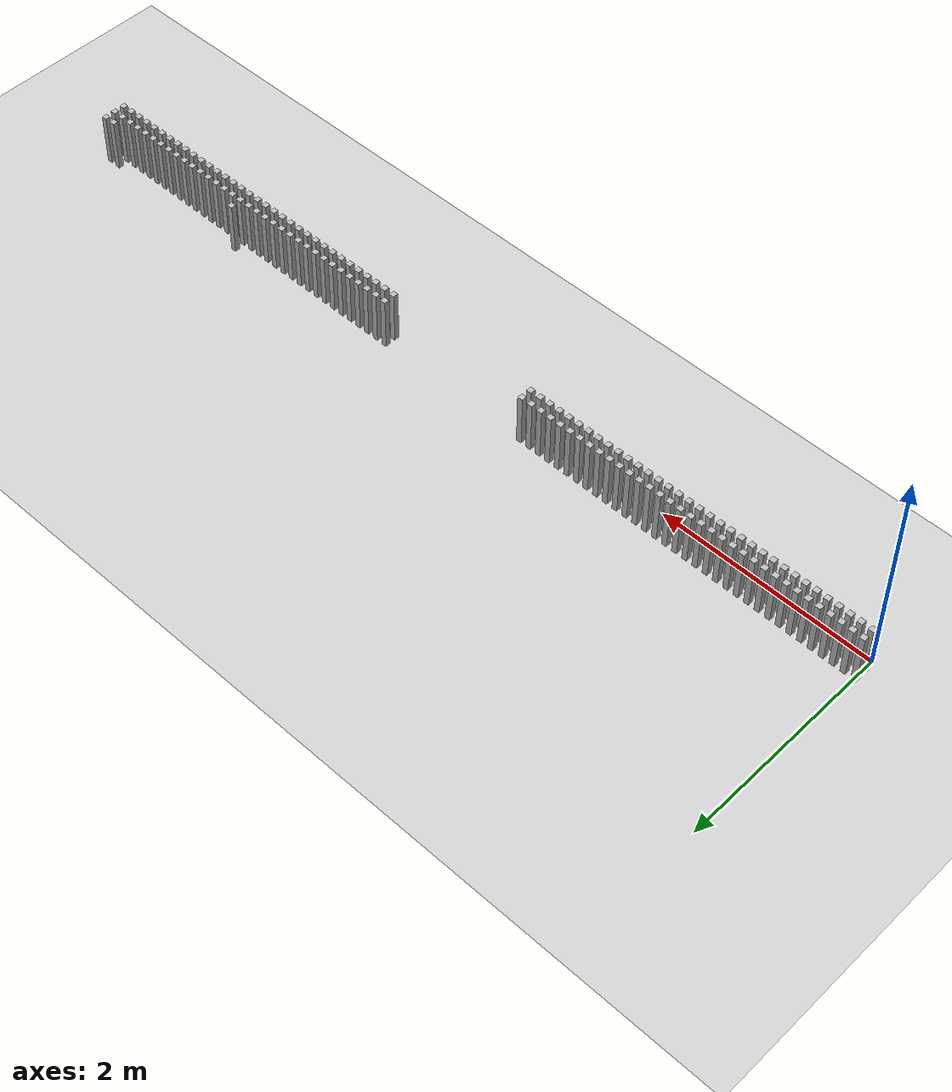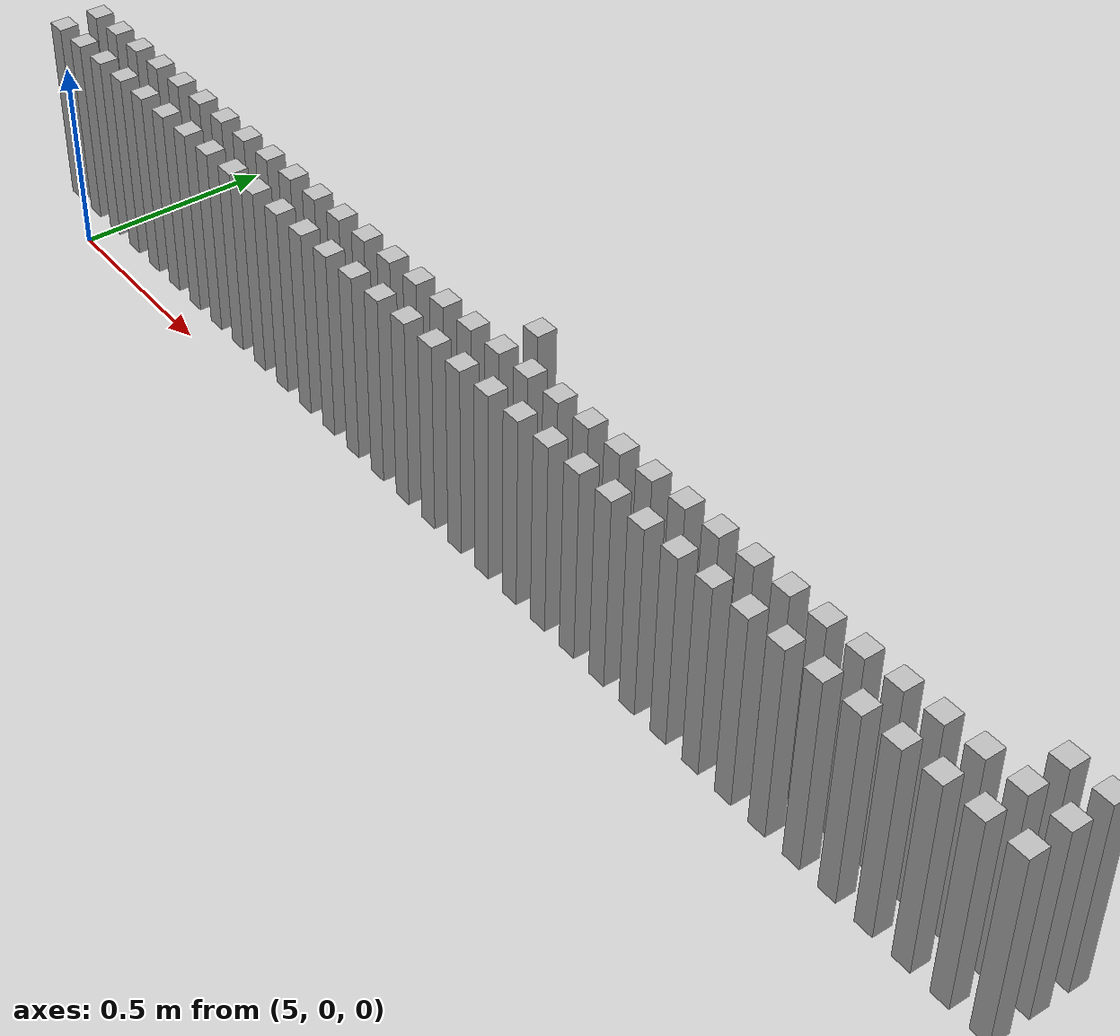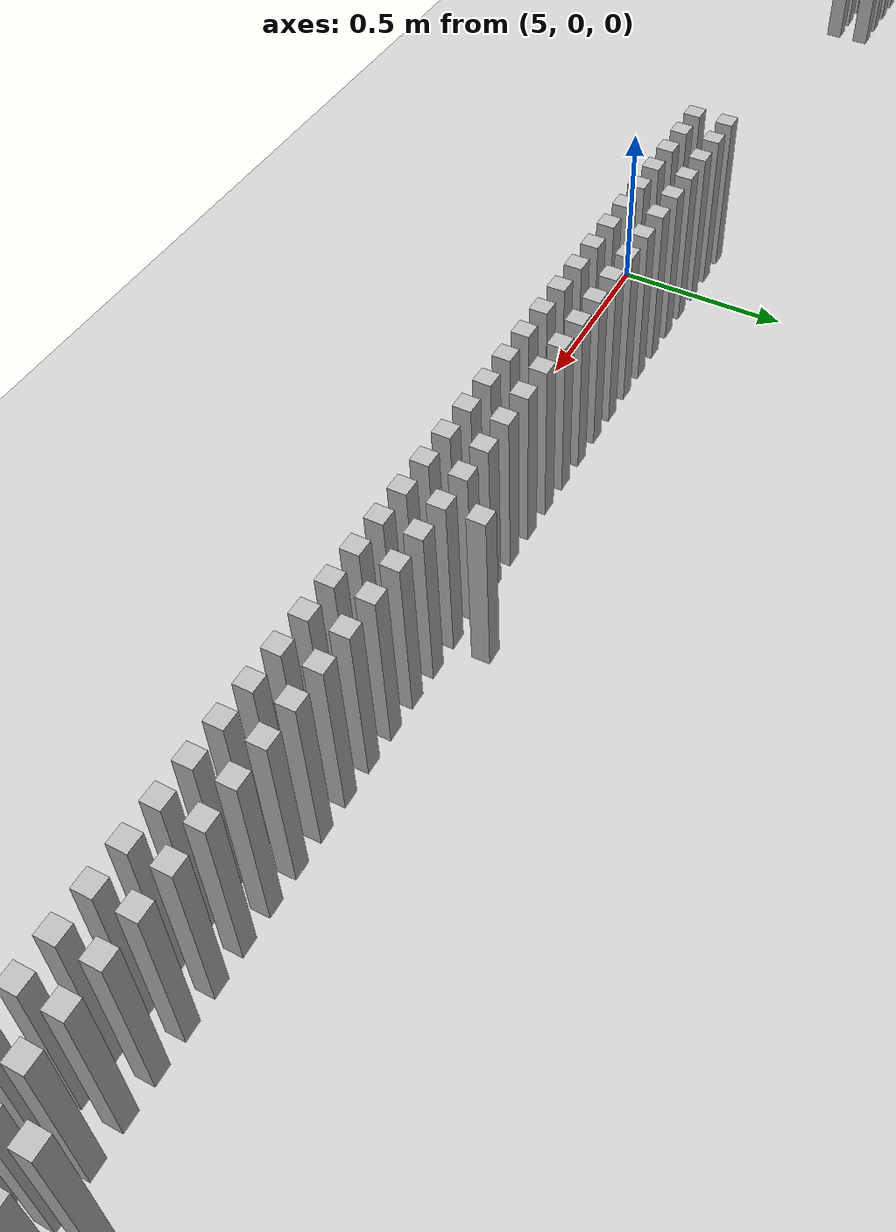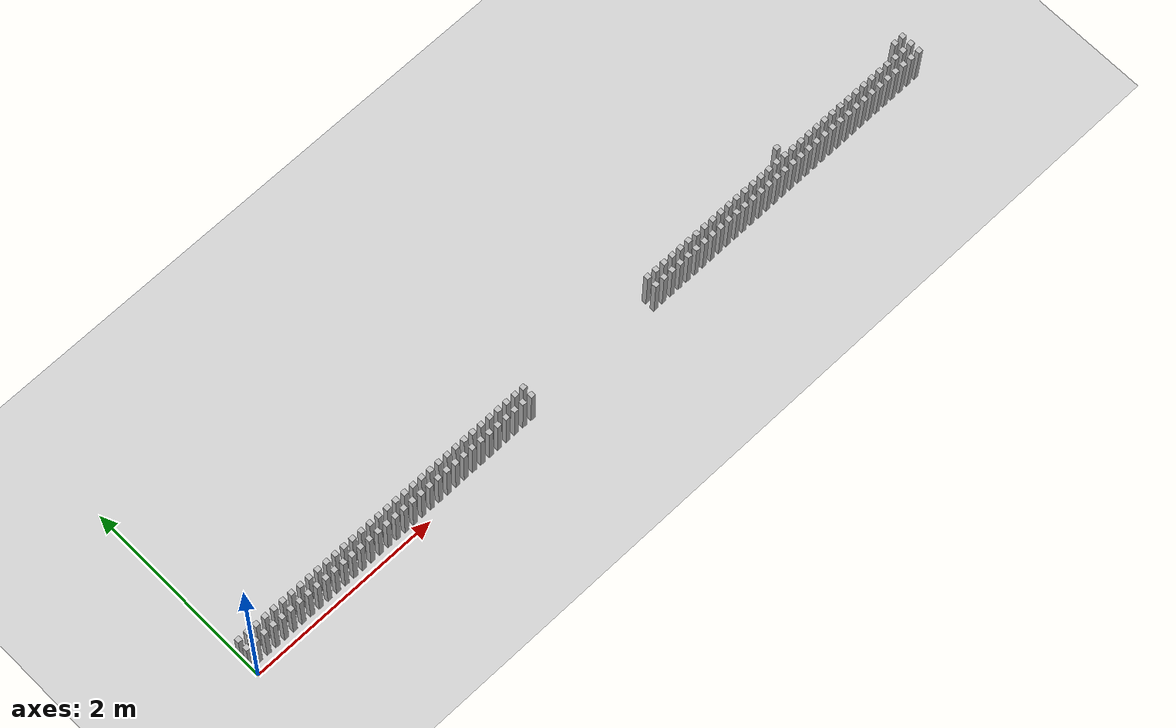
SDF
<sdf version="1.6">
 <world name="default_world">
  <include><uri>model://sun</uri></include>
  <include><uri>model://ground_plane</uri></include>
  <model name="wall_957">
   <static>true</static>
   <link name="link">
    <collision name="collision"><geometry><box><size>0.05 0.05 0.5</size></box></geometry></collision>
    <visual name="visual"><geometry><box><size>0.05 0.05 0.5</size></box></geometry></visual>
    <pose>6.5 0.30000000000000004 0.25 0 0 0</pose>
   </link>
  </model>
  <model name="wall_958">
   <static>true</static>
   <link name="link">
    <collision name="collision"><geometry><box><size>0.05 0.05 0.5</size></box></geometry></collision>
    <visual name="visual"><geometry><box><size>0.05 0.05 0.5</size></box></geometry></visual>
    <pose>8.0 0.30000000000000004 0.25 0 0 0</pose>
   </link>
  </model>
  <model name="wall_959">
   <static>true</static>
   <link name="link">
    <collision name="collision"><geometry><box><size>0.05 0.05 0.5</size></box></geometry></collision>
    <visual name="visual"><geometry><box><size>0.05 0.05 0.5</size></box></geometry></visual>
    <pose>8.1 0.30000000000000004 0.25 0 0 0</pose>
   </link>
  </model>
  <model name="wall_960">
   <static>true</static>
   <link name="link">
    <collision name="collision"><geometry><box><size>0.05 0.05 0.5</size></box></geometry></collision>
    <visual name="visual"><geometry><box><size>0.05 0.05 0.5</size></box></geometry></visual>
    <pose>0.0 0.2 0.25 0 0 0</pose>
   </link>
  </model>
  <model name="wall_961">
   <static>true</static>
   <link name="link">
    <collision name="collision"><geometry><box><size>0.05 0.05 0.5</size></box></geometry></collision>
    <visual name="visual"><geometry><box><size>0.05 0.05 0.5</size></box></geometry></visual>
    <pose>0.1 0.2 0.25 0 0 0</pose>
   </link>
  </model>
  <model name="wall_962">
   <static>true</static>
   <link name="link">
    <collision name="collision"><geometry><box><size>0.05 0.05 0.5</size></box></geometry></collision>
    <visual name="visual"><geometry><box><size>0.05 0.05 0.5</size></box></geometry></visual>
    <pose>0.2 0.2 0.25 0 0 0</pose>
   </link>
  </model>
  <model name="wall_963">
   <static>true</static>
   <link name="link">
    <collision name="collision"><geometry><box><size>0.05 0.05 0.5</size></box></geometry></collision>
    <visual name="visual"><geometry><box><size>0.05 0.05 0.5</size></box></geometry></visual>
    <pose>0.30000000000000004 0.2 0.25 0 0 0</pose>
   </link>
  </model>
  <model name="wall_964">
   <static>true</static>
   <link name="link">
    <collision name="collision"><geometry><box><size>0.05 0.05 0.5</size></box></geometry></collision>
    <visual name="visual"><geometry><box><size>0.05 0.05 0.5</size></box></geometry></visual>
    <pose>0.4 0.2 0.25 0 0 0</pose>
   </link>
  </model>
  <model name="wall_965">
   <static>true</static>
   <link name="link">
    <collision name="collision"><geometry><box><size>0.05 0.05 0.5</size></box></geometry></collision>
    <visual name="visual"><geometry><box><size>0.05 0.05 0.5</size></box></geometry></visual>
    <pose>0.5 0.2 0.25 0 0 0</pose>
   </link>
  </model>
  <model name="wall_966">
   <static>true</static>
   <link name="link">
    <collision name="collision"><geometry><box><size>0.05 0.05 0.5</size></box></geometry></collision>
    <visual name="visual"><geometry><box><size>0.05 0.05 0.5</size></box></geometry></visual>
    <pose>0.6000000000000001 0.2 0.25 0 0 0</pose>
   </link>
  </model>
  <model name="wall_967">
   <static>true</static>
   <link name="link">
    <collision name="collision"><geometry><box><size>0.05 0.05 0.5</size></box></geometry></collision>
    <visual name="visual"><geometry><box><size>0.05 0.05 0.5</size></box></geometry></visual>
    <pose>0.7000000000000001 0.2 0.25 0 0 0</pose>
   </link>
  </model>
  <model name="wall_968">
   <static>true</static>
   <link name="link">
    <collision name="collision"><geometry><box><size>0.05 0.05 0.5</size></box></geometry></collision>
    <visual name="visual"><geometry><box><size>0.05 0.05 0.5</size></box></geometry></visual>
    <pose>0.8 0.2 0.25 0 0 0</pose>
   </link>
  </model>
  <model name="wall_969">
   <static>true</static>
   <link name="link">
    <collision name="collision"><geometry><box><size>0.05 0.05 0.5</size></box></geometry></collision>
    <visual name="visual"><geometry><box><size>0.05 0.05 0.5</size></box></geometry></visual>
    <pose>0.9 0.2 0.25 0 0 0</pose>
   </link>
  </model>
  <model name="wall_970">
   <static>true</static>
   <link name="link">
    <collision name="collision"><geometry><box><size>0.05 0.05 0.5</size></box></geometry></collision>
    <visual name="visual"><geometry><box><size>0.05 0.05 0.5</size></box></geometry></visual>
    <pose>1.0 0.2 0.25 0 0 0</pose>
   </link>
  </model>
  <model name="wall_971">
   <static>true</static>
   <link name="link">
    <collision name="collision"><geometry><box><size>0.05 0.05 0.5</size></box></geometry></collision>
    <visual name="visual"><geometry><box><size>0.05 0.05 0.5</size></box></geometry></visual>
    <pose>1.1 0.2 0.25 0 0 0</pose>
   </link>
  </model>
  <model name="wall_972">
   <static>true</static>
   <link name="link">
    <collision name="collision"><geometry><box><size>0.05 0.05 0.5</size></box></geometry></collision>
    <visual name="visual"><geometry><box><size>0.05 0.05 0.5</size></box></geometry></visual>
    <pose>1.2000000000000002 0.2 0.25 0 0 0</pose>
   </link>
  </model>
  <model name="wall_973">
   <static>true</static>
   <link name="link">
    <collision name="collision"><geometry><box><size>0.05 0.05 0.5</size></box></geometry></collision>
    <visual name="visual"><geometry><box><size>0.05 0.05 0.5</size></box></geometry></visual>
    <pose>1.3 0.2 0.25 0 0 0</pose>
   </link>
  </model>
  <model name="wall_974">
   <static>true</static>
   <link name="link">
    <collision name="collision"><geometry><box><size>0.05 0.05 0.5</size></box></geometry></collision>
    <visual name="visual"><geometry><box><size>0.05 0.05 0.5</size></box></geometry></visual>
    <pose>1.4000000000000001 0.2 0.25 0 0 0</pose>
   </link>
  </model>
  <model name="wall_975">
   <static>true</static>
   <link name="link">
    <collision name="collision"><geometry><box><size>0.05 0.05 0.5</size></box></geometry></collision>
    <visual name="visual"><geometry><box><size>0.05 0.05 0.5</size></box></geometry></visual>
    <pose>1.5 0.2 0.25 0 0 0</pose>
   </link>
  </model>
  <model name="wall_976">
   <static>true</static>
   <link name="link">
    <collision name="collision"><geometry><box><size>0.05 0.05 0.5</size></box></geometry></collision>
    <visual name="visual"><geometry><box><size>0.05 0.05 0.5</size></box></geometry></visual>
    <pose>1.6 0.2 0.25 0 0 0</pose>
   </link>
  </model>
  <model name="wall_977">
   <static>true</static>
   <link name="link">
    <collision name="collision"><geometry><box><size>0.05 0.05 0.5</size></box></geometry></collision>
    <visual name="visual"><geometry><box><size>0.05 0.05 0.5</size></box></geometry></visual>
    <pose>1.7000000000000002 0.2 0.25 0 0 0</pose>
   </link>
  </model>
  <model name="wall_978">
   <static>true</static>
   <link name="link">
    <collision name="collision"><geometry><box><size>0.05 0.05 0.5</size></box></geometry></collision>
    <visual name="visual"><geometry><box><size>0.05 0.05 0.5</size></box></geometry></visual>
    <pose>1.8 0.2 0.25 0 0 0</pose>
   </link>
  </model>
  <model name="wall_979">
   <static>true</static>
   <link name="link">
    <collision name="collision"><geometry><box><size>0.05 0.05 0.5</size></box></geometry></collision>
    <visual name="visual"><geometry><box><size>0.05 0.05 0.5</size></box></geometry></visual>
    <pose>1.9000000000000001 0.2 0.25 0 0 0</pose>
   </link>
  </model>
  <model name="wall_980">
   <static>true</static>
   <link name="link">
    <collision name="collision"><geometry><box><size>0.05 0.05 0.5</size></box></geometry></collision>
    <visual name="visual"><geometry><box><size>0.05 0.05 0.5</size></box></geometry></visual>
    <pose>2.0 0.2 0.25 0 0 0</pose>
   </link>
  </model>
  <model name="wall_981">
   <static>true</static>
   <link name="link">
    <collision name="collision"><geometry><box><size>0.05 0.05 0.5</size></box></geometry></collision>
    <visual name="visual"><geometry><box><size>0.05 0.05 0.5</size></box></geometry></visual>
    <pose>2.1 0.2 0.25 0 0 0</pose>
   </link>
  </model>
  <model name="wall_982">
   <static>true</static>
   <link name="link">
    <collision name="collision"><geometry><box><size>0.05 0.05 0.5</size></box></geometry></collision>
    <visual name="visual"><geometry><box><size>0.05 0.05 0.5</size></box></geometry></visual>
    <pose>2.2 0.2 0.25 0 0 0</pose>
   </link>
  </model>
  <model name="wall_983">
   <static>true</static>
   <link name="link">
    <collision name="collision"><geometry><box><size>0.05 0.05 0.5</size></box></geometry></collision>
    <visual name="visual"><geometry><box><size>0.05 0.05 0.5</size></box></geometry></visual>
    <pose>2.3000000000000003 0.2 0.25 0 0 0</pose>
   </link>
  </model>
  <model name="wall_984">
   <static>true</static>
   <link name="link">
    <collision name="collision"><geometry><box><size>0.05 0.05 0.5</size></box></geometry></collision>
    <visual name="visual"><geometry><box><size>0.05 0.05 0.5</size></box></geometry></visual>
    <pose>2.4000000000000004 0.2 0.25 0 0 0</pose>
   </link>
  </model>
  <model name="wall_985">
   <static>true</static>
   <link name="link">
    <collision name="collision"><geometry><box><size>0.05 0.05 0.5</size></box></geometry></collision>
    <visual name="visual"><geometry><box><size>0.05 0.05 0.5</size></box></geometry></visual>
    <pose>2.5 0.2 0.25 0 0 0</pose>
   </link>
  </model>
  <model name="wall_986">
   <static>true</static>
   <link name="link">
    <collision name="collision"><geometry><box><size>0.05 0.05 0.5</size></box></geometry></collision>
    <visual name="visual"><geometry><box><size>0.05 0.05 0.5</size></box></geometry></visual>
    <pose>2.6 0.2 0.25 0 0 0</pose>
   </link>
  </model>
  <model name="wall_987">
   <static>true</static>
   <link name="link">
    <collision name="collision"><geometry><box><size>0.05 0.05 0.5</size></box></geometry></collision>
    <visual name="visual"><geometry><box><size>0.05 0.05 0.5</size></box></geometry></visual>
    <pose>2.7 0.2 0.25 0 0 0</pose>
   </link>
  </model>
  <model name="wall_988">
   <static>true</static>
   <link name="link">
    <collision name="collision"><geometry><box><size>0.05 0.05 0.5</size></box></geometry></collision>
    <visual name="visual"><geometry><box><size>0.05 0.05 0.5</size></box></geometry></visual>
    <pose>2.8000000000000003 0.2 0.25 0 0 0</pose>
   </link>
  </model>
  <model name="wall_989">
   <static>true</static>
   <link name="link">
    <collision name="collision"><geometry><box><size>0.05 0.05 0.5</size></box></geometry></collision>
    <visual name="visual"><geometry><box><size>0.05 0.05 0.5</size></box></geometry></visual>
    <pose>2.9000000000000004 0.2 0.25 0 0 0</pose>
   </link>
  </model>
  <model name="wall_990">
   <static>true</static>
   <link name="link">
    <collision name="collision"><geometry><box><size>0.05 0.05 0.5</size></box></geometry></collision>
    <visual name="visual"><geometry><box><size>0.05 0.05 0.5</size></box></geometry></visual>
    <pose>3.0 0.2 0.25 0 0 0</pose>
   </link>
  </model>
  <model name="wall_991">
   <static>true</static>
   <link name="link">
    <collision name="collision"><geometry><box><size>0.05 0.05 0.5</size></box></geometry></collision>
    <visual name="visual"><geometry><box><size>0.05 0.05 0.5</size></box></geometry></visual>
    <pose>3.1 0.2 0.25 0 0 0</pose>
   </link>
  </model>
  <model name="wall_992">
   <static>true</static>
   <link name="link">
    <collision name="collision"><geometry><box><size>0.05 0.05 0.5</size></box></geometry></collision>
    <visual name="visual"><geometry><box><size>0.05 0.05 0.5</size></box></geometry></visual>
    <pose>3.2 0.2 0.25 0 0 0</pose>
   </link>
  </model>
  <model name="wall_993">
   <static>true</static>
   <link name="link">
    <collision name="collision"><geometry><box><size>0.05 0.05 0.5</size></box></geometry></collision>
    <visual name="visual"><geometry><box><size>0.05 0.05 0.5</size></box></geometry></visual>
    <pose>3.3000000000000003 0.2 0.25 0 0 0</pose>
   </link>
  </model>
  <model name="wall_994">
   <static>true</static>
   <link name="link">
    <collision name="collision"><geometry><box><size>0.05 0.05 0.5</size></box></geometry></collision>
    <visual name="visual"><geometry><box><size>0.05 0.05 0.5</size></box></geometry></visual>
    <pose>4.800000000000001 0.2 0.25 0 0 0</pose>
   </link>
  </model>
  <model name="wall_995">
   <static>true</static>
   <link name="link">
    <collision name="collision"><geometry><box><size>0.05 0.05 0.5</size></box></geometry></collision>
    <visual name="visual"><geometry><box><size>0.05 0.05 0.5</size></box></geometry></visual>
    <pose>4.9 0.2 0.25 0 0 0</pose>
   </link>
  </model>
  <model name="wall_996">
   <static>true</static>
   <link name="link">
    <collision name="collision"><geometry><box><size>0.05 0.05 0.5</size></box></geometry></collision>
    <visual name="visual"><geometry><box><size>0.05 0.05 0.5</size></box></geometry></visual>
    <pose>5.0 0.2 0.25 0 0 0</pose>
   </link>
  </model>
  <model name="wall_997">
   <static>true</static>
   <link name="link">
    <collision name="collision"><geometry><box><size>0.05 0.05 0.5</size></box></geometry></collision>
    <visual name="visual"><geometry><box><size>0.05 0.05 0.5</size></box></geometry></visual>
    <pose>5.1000000000000005 0.2 0.25 0 0 0</pose>
   </link>
  </model>
  <model name="wall_998">
   <static>true</static>
   <link name="link">
    <collision name="collision"><geometry><box><size>0.05 0.05 0.5</size></box></geometry></collision>
    <visual name="visual"><geometry><box><size>0.05 0.05 0.5</size></box></geometry></visual>
    <pose>5.2 0.2 0.25 0 0 0</pose>
   </link>
  </model>
  <model name="wall_999">
   <static>true</static>
   <link name="link">
    <collision name="collision"><geometry><box><size>0.05 0.05 0.5</size></box></geometry></collision>
    <visual name="visual"><geometry><box><size>0.05 0.05 0.5</size></box></geometry></visual>
    <pose>5.300000000000001 0.2 0.25 0 0 0</pose>
   </link>
  </model>
  <model name="wall_1000">
   <static>true</static>
   <link name="link">
    <collision name="collision"><geometry><box><size>0.05 0.05 0.5</size></box></geometry></collision>
    <visual name="visual"><geometry><box><size>0.05 0.05 0.5</size></box></geometry></visual>
    <pose>5.4 0.2 0.25 0 0 0</pose>
   </link>
  </model>
  <model name="wall_1001">
   <static>true</static>
   <link name="link">
    <collision name="collision"><geometry><box><size>0.05 0.05 0.5</size></box></geometry></collision>
    <visual name="visual"><geometry><box><size>0.05 0.05 0.5</size></box></geometry></visual>
    <pose>5.5 0.2 0.25 0 0 0</pose>
   </link>
  </model>
  <model name="wall_1002">
   <static>true</static>
   <link name="link">
    <collision name="collision"><geometry><box><size>0.05 0.05 0.5</size></box></geometry></collision>
    <visual name="visual"><geometry><box><size>0.05 0.05 0.5</size></box></geometry></visual>
    <pose>5.6000000000000005 0.2 0.25 0 0 0</pose>
   </link>
  </model>
  <model name="wall_1003">
   <static>true</static>
   <link name="link">
    <collision name="collision"><geometry><box><size>0.05 0.05 0.5</size></box></geometry></collision>
    <visual name="visual"><geometry><box><size>0.05 0.05 0.5</size></box></geometry></visual>
    <pose>5.7 0.2 0.25 0 0 0</pose>
   </link>
  </model>
  <model name="wall_1004">
   <static>true</static>
   <link name="link">
    <collision name="collision"><geometry><box><size>0.05 0.05 0.5</size></box></geometry></collision>
    <visual name="visual"><geometry><box><size>0.05 0.05 0.5</size></box></geometry></visual>
    <pose>5.800000000000001 0.2 0.25 0 0 0</pose>
   </link>
  </model>
  <model name="wall_1005">
   <static>true</static>
   <link name="link">
    <collision name="collision"><geometry><box><size>0.05 0.05 0.5</size></box></geometry></collision>
    <visual name="visual"><geometry><box><size>0.05 0.05 0.5</size></box></geometry></visual>
    <pose>5.9 0.2 0.25 0 0 0</pose>
   </link>
  </model>
  <model name="wall_1006">
   <static>true</static>
   <link name="link">
    <collision name="collision"><geometry><box><size>0.05 0.05 0.5</size></box></geometry></collision>
    <visual name="visual"><geometry><box><size>0.05 0.05 0.5</size></box></geometry></visual>
    <pose>6.0 0.2 0.25 0 0 0</pose>
   </link>
  </model>
  <model name="wall_1007">
   <static>true</static>
   <link name="link">
    <collision name="collision"><geometry><box><size>0.05 0.05 0.5</size></box></geometry></collision>
    <visual name="visual"><geometry><box><size>0.05 0.05 0.5</size></box></geometry></visual>
    <pose>6.1000000000000005 0.2 0.25 0 0 0</pose>
   </link>
  </model>
  <model name="wall_1008">
   <static>true</static>
   <link name="link">
    <collision name="collision"><geometry><box><size>0.05 0.05 0.5</size></box></geometry></collision>
    <visual name="visual"><geometry><box><size>0.05 0.05 0.5</size></box></geometry></visual>
    <pose>6.2 0.2 0.25 0 0 0</pose>
   </link>
  </model>
  <model name="wall_1009">
   <static>true</static>
   <link name="link">
    <collision name="collision"><geometry><box><size>0.05 0.05 0.5</size></box></geometry></collision>
    <visual name="visual"><geometry><box><size>0.05 0.05 0.5</size></box></geometry></visual>
    <pose>6.300000000000001 0.2 0.25 0 0 0</pose>
   </link>
  </model>
  <model name="wall_1010">
   <static>true</static>
   <link name="link">
    <collision name="collision"><geometry><box><size>0.05 0.05 0.5</size></box></geometry></collision>
    <visual name="visual"><geometry><box><size>0.05 0.05 0.5</size></box></geometry></visual>
    <pose>6.4 0.2 0.25 0 0 0</pose>
   </link>
  </model>
  <model name="wall_1011">
   <static>true</static>
   <link name="link">
    <collision name="collision"><geometry><box><size>0.05 0.05 0.5</size></box></geometry></collision>
    <visual name="visual"><geometry><box><size>0.05 0.05 0.5</size></box></geometry></visual>
    <pose>6.5 0.2 0.25 0 0 0</pose>
   </link>
  </model>
  <model name="wall_1012">
   <static>true</static>
   <link name="link">
    <collision name="collision"><geometry><box><size>0.05 0.05 0.5</size></box></geometry></collision>
    <visual name="visual"><geometry><box><size>0.05 0.05 0.5</size></box></geometry></visual>
    <pose>6.6000000000000005 0.2 0.25 0 0 0</pose>
   </link>
  </model>
  <model name="wall_1013">
   <static>true</static>
   <link name="link">
    <collision name="collision"><geometry><box><size>0.05 0.05 0.5</size></box></geometry></collision>
    <visual name="visual"><geometry><box><size>0.05 0.05 0.5</size></box></geometry></visual>
    <pose>6.7 0.2 0.25 0 0 0</pose>
   </link>
  </model>
  <model name="wall_1014">
   <static>true</static>
   <link name="link">
    <collision name="collision"><geometry><box><size>0.05 0.05 0.5</size></box></geometry></collision>
    <visual name="visual"><geometry><box><size>0.05 0.05 0.5</size></box></geometry></visual>
    <pose>6.800000000000001 0.2 0.25 0 0 0</pose>
   </link>
  </model>
  <model name="wall_1015">
   <static>true</static>
   <link name="link">
    <collision name="collision"><geometry><box><size>0.05 0.05 0.5</size></box></geometry></collision>
    <visual name="visual"><geometry><box><size>0.05 0.05 0.5</size></box></geometry></visual>
    <pose>6.9 0.2 0.25 0 0 0</pose>
   </link>
  </model>
  <model name="wall_1016">
   <static>true</static>
   <link name="link">
    <collision name="collision"><geometry><box><size>0.05 0.05 0.5</size></box></geometry></collision>
    <visual name="visual"><geometry><box><size>0.05 0.05 0.5</size></box></geometry></visual>
    <pose>7.0 0.2 0.25 0 0 0</pose>
   </link>
  </model>
  <model name="wall_1017">
   <static>true</static>
   <link name="link">
    <collision name="collision"><geometry><box><size>0.05 0.05 0.5</size></box></geometry></collision>
    <visual name="visual"><geometry><box><size>0.05 0.05 0.5</size></box></geometry></visual>
    <pose>7.1000000000000005 0.2 0.25 0 0 0</pose>
   </link>
  </model>
  <model name="wall_1018">
   <static>true</static>
   <link name="link">
    <collision name="collision"><geometry><box><size>0.05 0.05 0.5</size></box></geometry></collision>
    <visual name="visual"><geometry><box><size>0.05 0.05 0.5</size></box></geometry></visual>
    <pose>7.2 0.2 0.25 0 0 0</pose>
   </link>
  </model>
  <model name="wall_1019">
   <static>true</static>
   <link name="link">
    <collision name="collision"><geometry><box><size>0.05 0.05 0.5</size></box></geometry></collision>
    <visual name="visual"><geometry><box><size>0.05 0.05 0.5</size></box></geometry></visual>
    <pose>7.300000000000001 0.2 0.25 0 0 0</pose>
   </link>
  </model>
  <model name="wall_1020">
   <static>true</static>
   <link name="link">
    <collision name="collision"><geometry><box><size>0.05 0.05 0.5</size></box></geometry></collision>
    <visual name="visual"><geometry><box><size>0.05 0.05 0.5</size></box></geometry></visual>
    <pose>7.4 0.2 0.25 0 0 0</pose>
   </link>
  </model>
  <model name="wall_1021">
   <static>true</static>
   <link name="link">
    <collision name="collision"><geometry><box><size>0.05 0.05 0.5</size></box></geometry></collision>
    <visual name="visual"><geometry><box><size>0.05 0.05 0.5</size></box></geometry></visual>
    <pose>7.5 0.2 0.25 0 0 0</pose>
   </link>
  </model>
  <model name="wall_1022">
   <static>true</static>
   <link name="link">
    <collision name="collision"><geometry><box><size>0.05 0.05 0.5</size></box></geometry></collision>
    <visual name="visual"><geometry><box><size>0.05 0.05 0.5</size></box></geometry></visual>
    <pose>7.6000000000000005 0.2 0.25 0 0 0</pose>
   </link>
  </model>
  <model name="wall_1023">
   <static>true</static>
   <link name="link">
    <collision name="collision"><geometry><box><size>0.05 0.05 0.5</size></box></geometry></collision>
    <visual name="visual"><geometry><box><size>0.05 0.05 0.5</size></box></geometry></visual>
    <pose>7.7 0.2 0.25 0 0 0</pose>
   </link>
  </model>
  <model name="wall_1024">
   <static>true</static>
   <link name="link">
    <collision name="collision"><geometry><box><size>0.05 0.05 0.5</size></box></geometry></collision>
    <visual name="visual"><geometry><box><size>0.05 0.05 0.5</size></box></geometry></visual>
    <pose>7.800000000000001 0.2 0.25 0 0 0</pose>
   </link>
  </model>
  <model name="wall_1025">
   <static>true</static>
   <link name="link">
    <collision name="collision"><geometry><box><size>0.05 0.05 0.5</size></box></geometry></collision>
    <visual name="visual"><geometry><box><size>0.05 0.05 0.5</size></box></geometry></visual>
    <pose>7.9 0.2 0.25 0 0 0</pose>
   </link>
  </model>
  <model name="wall_1026">
   <static>true</static>
   <link name="link">
    <collision name="collision"><geometry><box><size>0.05 0.05 0.5</size></box></geometry></collision>
    <visual name="visual"><geometry><box><size>0.05 0.05 0.5</size></box></geometry></visual>
    <pose>8.0 0.2 0.25 0 0 0</pose>
   </link>
  </model>
  <model name="wall_1027">
   <static>true</static>
   <link name="link">
    <collision name="collision"><geometry><box><size>0.05 0.05 0.5</size></box></geometry></collision>
    <visual name="visual"><geometry><box><size>0.05 0.05 0.5</size></box></geometry></visual>
    <pose>8.1 0.2 0.25 0 0 0</pose>
   </link>
  </model>
  <model name="wall_1028">
   <static>true</static>
   <link name="link">
    <collision name="collision"><geometry><box><size>0.05 0.05 0.5</size></box></geometry></collision>
    <visual name="visual"><geometry><box><size>0.05 0.05 0.5</size></box></geometry></visual>
    <pose>0.0 0.1 0.25 0 0 0</pose>
   </link>
  </model>
  <model name="wall_1029">
   <static>true</static>
   <link name="link">
    <collision name="collision"><geometry><box><size>0.05 0.05 0.5</size></box></geometry></collision>
    <visual name="visual"><geometry><box><size>0.05 0.05 0.5</size></box></geometry></visual>
    <pose>0.1 0.1 0.25 0 0 0</pose>
   </link>
  </model>
  <model name="wall_1030">
   <static>true</static>
   <link name="link">
    <collision name="collision"><geometry><box><size>0.05 0.05 0.5</size></box></geometry></collision>
    <visual name="visual"><geometry><box><size>0.05 0.05 0.5</size></box></geometry></visual>
    <pose>0.2 0.1 0.25 0 0 0</pose>
   </link>
  </model>
  <model name="wall_1031">
   <static>true</static>
   <link name="link">
    <collision name="collision"><geometry><box><size>0.05 0.05 0.5</size></box></geometry></collision>
    <visual name="visual"><geometry><box><size>0.05 0.05 0.5</size></box></geometry></visual>
    <pose>0.30000000000000004 0.1 0.25 0 0 0</pose>
   </link>
  </model>
  <model name="wall_1032">
   <static>true</static>
   <link name="link">
    <collision name="collision"><geometry><box><size>0.05 0.05 0.5</size></box></geometry></collision>
    <visual name="visual"><geometry><box><size>0.05 0.05 0.5</size></box></geometry></visual>
    <pose>0.4 0.1 0.25 0 0 0</pose>
   </link>
  </model>
  <model name="wall_1033">
   <static>true</static>
   <link name="link">
    <collision name="collision"><geometry><box><size>0.05 0.05 0.5</size></box></geometry></collision>
    <visual name="visual"><geometry><box><size>0.05 0.05 0.5</size></box></geometry></visual>
    <pose>0.5 0.1 0.25 0 0 0</pose>
   </link>
  </model>
  <model name="wall_1034">
   <static>true</static>
   <link name="link">
    <collision name="collision"><geometry><box><size>0.05 0.05 0.5</size></box></geometry></collision>
    <visual name="visual"><geometry><box><size>0.05 0.05 0.5</size></box></geometry></visual>
    <pose>0.6000000000000001 0.1 0.25 0 0 0</pose>
   </link>
  </model>
  <model name="wall_1035">
   <static>true</static>
   <link name="link">
    <collision name="collision"><geometry><box><size>0.05 0.05 0.5</size></box></geometry></collision>
    <visual name="visual"><geometry><box><size>0.05 0.05 0.5</size></box></geometry></visual>
    <pose>0.7000000000000001 0.1 0.25 0 0 0</pose>
   </link>
  </model>
  <model name="wall_1036">
   <static>true</static>
   <link name="link">
    <collision name="collision"><geometry><box><size>0.05 0.05 0.5</size></box></geometry></collision>
    <visual name="visual"><geometry><box><size>0.05 0.05 0.5</size></box></geometry></visual>
    <pose>0.8 0.1 0.25 0 0 0</pose>
   </link>
  </model>
  <model name="wall_1037">
   <static>true</static>
   <link name="link">
    <collision name="collision"><geometry><box><size>0.05 0.05 0.5</size></box></geometry></collision>
    <visual name="visual"><geometry><box><size>0.05 0.05 0.5</size></box></geometry></visual>
    <pose>0.9 0.1 0.25 0 0 0</pose>
   </link>
  </model>
  <model name="wall_1038">
   <static>true</static>
   <link name="link">
    <collision name="collision"><geometry><box><size>0.05 0.05 0.5</size></box></geometry></collision>
    <visual name="visual"><geometry><box><size>0.05 0.05 0.5</size></box></geometry></visual>
    <pose>1.0 0.1 0.25 0 0 0</pose>
   </link>
  </model>
  <model name="wall_1039">
   <static>true</static>
   <link name="link">
    <collision name="collision"><geometry><box><size>0.05 0.05 0.5</size></box></geometry></collision>
    <visual name="visual"><geometry><box><size>0.05 0.05 0.5</size></box></geometry></visual>
    <pose>1.1 0.1 0.25 0 0 0</pose>
   </link>
  </model>
  <model name="wall_1040">
   <static>true</static>
   <link name="link">
    <collision name="collision"><geometry><box><size>0.05 0.05 0.5</size></box></geometry></collision>
    <visual name="visual"><geometry><box><size>0.05 0.05 0.5</size></box></geometry></visual>
    <pose>1.2000000000000002 0.1 0.25 0 0 0</pose>
   </link>
  </model>
  <model name="wall_1041">
   <static>true</static>
   <link name="link">
    <collision name="collision"><geometry><box><size>0.05 0.05 0.5</size></box></geometry></collision>
    <visual name="visual"><geometry><box><size>0.05 0.05 0.5</size></box></geometry></visual>
    <pose>1.3 0.1 0.25 0 0 0</pose>
   </link>
  </model>
  <model name="wall_1042">
   <static>true</static>
   <link name="link">
    <collision name="collision"><geometry><box><size>0.05 0.05 0.5</size></box></geometry></collision>
    <visual name="visual"><geometry><box><size>0.05 0.05 0.5</size></box></geometry></visual>
    <pose>1.4000000000000001 0.1 0.25 0 0 0</pose>
   </link>
  </model>
  <model name="wall_1043">
   <static>true</static>
   <link name="link">
    <collision name="collision"><geometry><box><size>0.05 0.05 0.5</size></box></geometry></collision>
    <visual name="visual"><geometry><box><size>0.05 0.05 0.5</size></box></geometry></visual>
    <pose>1.5 0.1 0.25 0 0 0</pose>
   </link>
  </model>
  <model name="wall_1044">
   <static>true</static>
   <link name="link">
    <collision name="collision"><geometry><box><size>0.05 0.05 0.5</size></box></geometry></collision>
    <visual name="visual"><geometry><box><size>0.05 0.05 0.5</size></box></geometry></visual>
    <pose>1.6 0.1 0.25 0 0 0</pose>
   </link>
  </model>
  <model name="wall_1045">
   <static>true</static>
   <link name="link">
    <collision name="collision"><geometry><box><size>0.05 0.05 0.5</size></box></geometry></collision>
    <visual name="visual"><geometry><box><size>0.05 0.05 0.5</size></box></geometry></visual>
    <pose>1.7000000000000002 0.1 0.25 0 0 0</pose>
   </link>
  </model>
  <model name="wall_1046">
   <static>true</static>
   <link name="link">
    <collision name="collision"><geometry><box><size>0.05 0.05 0.5</size></box></geometry></collision>
    <visual name="visual"><geometry><box><size>0.05 0.05 0.5</size></box></geometry></visual>
    <pose>1.8 0.1 0.25 0 0 0</pose>
   </link>
  </model>
  <model name="wall_1047">
   <static>true</static>
   <link name="link">
    <collision name="collision"><geometry><box><size>0.05 0.05 0.5</size></box></geometry></collision>
    <visual name="visual"><geometry><box><size>0.05 0.05 0.5</size></box></geometry></visual>
    <pose>1.9000000000000001 0.1 0.25 0 0 0</pose>
   </link>
  </model>
  <model name="wall_1048">
   <static>true</static>
   <link name="link">
    <collision name="collision"><geometry><box><size>0.05 0.05 0.5</size></box></geometry></collision>
    <visual name="visual"><geometry><box><size>0.05 0.05 0.5</size></box></geometry></visual>
    <pose>2.0 0.1 0.25 0 0 0</pose>
   </link>
  </model>
  <model name="wall_1049">
   <static>true</static>
   <link name="link">
    <collision name="collision"><geometry><box><size>0.05 0.05 0.5</size></box></geometry></collision>
    <visual name="visual"><geometry><box><size>0.05 0.05 0.5</size></box></geometry></visual>
    <pose>2.1 0.1 0.25 0 0 0</pose>
   </link>
  </model>
  <model name="wall_1050">
   <static>true</static>
   <link name="link">
    <collision name="collision"><geometry><box><size>0.05 0.05 0.5</size></box></geometry></collision>
    <visual name="visual"><geometry><box><size>0.05 0.05 0.5</size></box></geometry></visual>
    <pose>2.2 0.1 0.25 0 0 0</pose>
   </link>
  </model>
  <model name="wall_1051">
   <static>true</static>
   <link name="link">
    <collision name="collision"><geometry><box><size>0.05 0.05 0.5</size></box></geometry></collision>
    <visual name="visual"><geometry><box><size>0.05 0.05 0.5</size></box></geometry></visual>
    <pose>2.3000000000000003 0.1 0.25 0 0 0</pose>
   </link>
  </model>
  <model name="wall_1052">
   <static>true</static>
   <link name="link">
    <collision name="collision"><geometry><box><size>0.05 0.05 0.5</size></box></geometry></collision>
    <visual name="visual"><geometry><box><size>0.05 0.05 0.5</size></box></geometry></visual>
    <pose>2.4000000000000004 0.1 0.25 0 0 0</pose>
   </link>
  </model>
  <model name="wall_1053">
   <static>true</static>
   <link name="link">
    <collision name="collision"><geometry><box><size>0.05 0.05 0.5</size></box></geometry></collision>
    <visual name="visual"><geometry><box><size>0.05 0.05 0.5</size></box></geometry></visual>
    <pose>2.5 0.1 0.25 0 0 0</pose>
   </link>
  </model>
  <model name="wall_1054">
   <static>true</static>
   <link name="link">
    <collision name="collision"><geometry><box><size>0.05 0.05 0.5</size></box></geometry></collision>
    <visual name="visual"><geometry><box><size>0.05 0.05 0.5</size></box></geometry></visual>
    <pose>2.6 0.1 0.25 0 0 0</pose>
   </link>
  </model>
  <model name="wall_1055">
   <static>true</static>
   <link name="link">
    <collision name="collision"><geometry><box><size>0.05 0.05 0.5</size></box></geometry></collision>
    <visual name="visual"><geometry><box><size>0.05 0.05 0.5</size></box></geometry></visual>
    <pose>2.7 0.1 0.25 0 0 0</pose>
   </link>
  </model>
  <model name="wall_1056">
   <static>true</static>
   <link name="link">
    <collision name="collision"><geometry><box><size>0.05 0.05 0.5</size></box></geometry></collision>
    <visual name="visual"><geometry><box><size>0.05 0.05 0.5</size></box></geometry></visual>
    <pose>2.8000000000000003 0.1 0.25 0 0 0</pose>
   </link>
  </model>
  <model name="wall_1057">
   <static>true</static>
   <link name="link">
    <collision name="collision"><geometry><box><size>0.05 0.05 0.5</size></box></geometry></collision>
    <visual name="visual"><geometry><box><size>0.05 0.05 0.5</size></box></geometry></visual>
    <pose>2.9000000000000004 0.1 0.25 0 0 0</pose>
   </link>
  </model>
  <model name="wall_1058">
   <static>true</static>
   <link name="link">
    <collision name="collision"><geometry><box><size>0.05 0.05 0.5</size></box></geometry></collision>
    <visual name="visual"><geometry><box><size>0.05 0.05 0.5</size></box></geometry></visual>
    <pose>3.0 0.1 0.25 0 0 0</pose>
   </link>
  </model>
  <model name="wall_1059">
   <static>true</static>
   <link name="link">
    <collision name="collision"><geometry><box><size>0.05 0.05 0.5</size></box></geometry></collision>
    <visual name="visual"><geometry><box><size>0.05 0.05 0.5</size></box></geometry></visual>
    <pose>3.1 0.1 0.25 0 0 0</pose>
   </link>
  </model>
  <model name="wall_1060">
   <static>true</static>
   <link name="link">
    <collision name="collision"><geometry><box><size>0.05 0.05 0.5</size></box></geometry></collision>
    <visual name="visual"><geometry><box><size>0.05 0.05 0.5</size></box></geometry></visual>
    <pose>3.2 0.1 0.25 0 0 0</pose>
   </link>
  </model>
  <model name="wall_1061">
   <static>true</static>
   <link name="link">
    <collision name="collision"><geometry><box><size>0.05 0.05 0.5</size></box></geometry></collision>
    <visual name="visual"><geometry><box><size>0.05 0.05 0.5</size></box></geometry></visual>
    <pose>3.3000000000000003 0.1 0.25 0 0 0</pose>
   </link>
  </model>
  <model name="wall_1062">
   <static>true</static>
   <link name="link">
    <collision name="collision"><geometry><box><size>0.05 0.05 0.5</size></box></geometry></collision>
    <visual name="visual"><geometry><box><size>0.05 0.05 0.5</size></box></geometry></visual>
    <pose>4.800000000000001 0.1 0.25 0 0 0</pose>
   </link>
  </model>
  <model name="wall_1063">
   <static>true</static>
   <link name="link">
    <collision name="collision"><geometry><box><size>0.05 0.05 0.5</size></box></geometry></collision>
    <visual name="visual"><geometry><box><size>0.05 0.05 0.5</size></box></geometry></visual>
    <pose>4.9 0.1 0.25 0 0 0</pose>
   </link>
  </model>
  <model name="wall_1064">
   <static>true</static>
   <link name="link">
    <collision name="collision"><geometry><box><size>0.05 0.05 0.5</size></box></geometry></collision>
    <visual name="visual"><geometry><box><size>0.05 0.05 0.5</size></box></geometry></visual>
    <pose>5.0 0.1 0.25 0 0 0</pose>
   </link>
  </model>
  <model name="wall_1065">
   <static>true</static>
   <link name="link">
    <collision name="collision"><geometry><box><size>0.05 0.05 0.5</size></box></geometry></collision>
    <visual name="visual"><geometry><box><size>0.05 0.05 0.5</size></box></geometry></visual>
    <pose>5.1000000000000005 0.1 0.25 0 0 0</pose>
   </link>
  </model>
  <model name="wall_1066">
   <static>true</static>
   <link name="link">
    <collision name="collision"><geometry><box><size>0.05 0.05 0.5</size></box></geometry></collision>
    <visual name="visual"><geometry><box><size>0.05 0.05 0.5</size></box></geometry></visual>
    <pose>5.2 0.1 0.25 0 0 0</pose>
   </link>
  </model>
  <model name="wall_1067">
   <static>true</static>
   <link name="link">
    <collision name="collision"><geometry><box><size>0.05 0.05 0.5</size></box></geometry></collision>
    <visual name="visual"><geometry><box><size>0.05 0.05 0.5</size></box></geometry></visual>
    <pose>5.300000000000001 0.1 0.25 0 0 0</pose>
   </link>
  </model>
  <model name="wall_1068">
   <static>true</static>
   <link name="link">
    <collision name="collision"><geometry><box><size>0.05 0.05 0.5</size></box></geometry></collision>
    <visual name="visual"><geometry><box><size>0.05 0.05 0.5</size></box></geometry></visual>
    <pose>5.4 0.1 0.25 0 0 0</pose>
   </link>
  </model>
  <model name="wall_1069">
   <static>true</static>
   <link name="link">
    <collision name="collision"><geometry><box><size>0.05 0.05 0.5</size></box></geometry></collision>
    <visual name="visual"><geometry><box><size>0.05 0.05 0.5</size></box></geometry></visual>
    <pose>5.5 0.1 0.25 0 0 0</pose>
   </link>
  </model>
  <model name="wall_1070">
   <static>true</static>
   <link name="link">
    <collision name="collision"><geometry><box><size>0.05 0.05 0.5</size></box></geometry></collision>
    <visual name="visual"><geometry><box><size>0.05 0.05 0.5</size></box></geometry></visual>
    <pose>5.6000000000000005 0.1 0.25 0 0 0</pose>
   </link>
  </model>
  <model name="wall_1071">
   <static>true</static>
   <link name="link">
    <collision name="collision"><geometry><box><size>0.05 0.05 0.5</size></box></geometry></collision>
    <visual name="visual"><geometry><box><size>0.05 0.05 0.5</size></box></geometry></visual>
    <pose>5.7 0.1 0.25 0 0 0</pose>
   </link>
  </model>
  <model name="wall_1072">
   <static>true</static>
   <link name="link">
    <collision name="collision"><geometry><box><size>0.05 0.05 0.5</size></box></geometry></collision>
    <visual name="visual"><geometry><box><size>0.05 0.05 0.5</size></box></geometry></visual>
    <pose>5.800000000000001 0.1 0.25 0 0 0</pose>
   </link>
  </model>
  <model name="wall_1073">
   <static>true</static>
   <link name="link">
    <collision name="collision"><geometry><box><size>0.05 0.05 0.5</size></box></geometry></collision>
    <visual name="visual"><geometry><box><size>0.05 0.05 0.5</size></box></geometry></visual>
    <pose>5.9 0.1 0.25 0 0 0</pose>
   </link>
  </model>
  <model name="wall_1074">
   <static>true</static>
   <link name="link">
    <collision name="collision"><geometry><box><size>0.05 0.05 0.5</size></box></geometry></collision>
    <visual name="visual"><geometry><box><size>0.05 0.05 0.5</size></box></geometry></visual>
    <pose>6.0 0.1 0.25 0 0 0</pose>
   </link>
  </model>
  <model name="wall_1075">
   <static>true</static>
   <link name="link">
    <collision name="collision"><geometry><box><size>0.05 0.05 0.5</size></box></geometry></collision>
    <visual name="visual"><geometry><box><size>0.05 0.05 0.5</size></box></geometry></visual>
    <pose>6.1000000000000005 0.1 0.25 0 0 0</pose>
   </link>
  </model>
  <model name="wall_1076">
   <static>true</static>
   <link name="link">
    <collision name="collision"><geometry><box><size>0.05 0.05 0.5</size></box></geometry></collision>
    <visual name="visual"><geometry><box><size>0.05 0.05 0.5</size></box></geometry></visual>
    <pose>6.2 0.1 0.25 0 0 0</pose>
   </link>
  </model>
  <model name="wall_1077">
   <static>true</static>
   <link name="link">
    <collision name="collision"><geometry><box><size>0.05 0.05 0.5</size></box></geometry></collision>
    <visual name="visual"><geometry><box><size>0.05 0.05 0.5</size></box></geometry></visual>
    <pose>6.300000000000001 0.1 0.25 0 0 0</pose>
   </link>
  </model>
  <model name="wall_1078">
   <static>true</static>
   <link name="link">
    <collision name="collision"><geometry><box><size>0.05 0.05 0.5</size></box></geometry></collision>
    <visual name="visual"><geometry><box><size>0.05 0.05 0.5</size></box></geometry></visual>
    <pose>6.4 0.1 0.25 0 0 0</pose>
   </link>
  </model>
  <model name="wall_1079">
   <static>true</static>
   <link name="link">
    <collision name="collision"><geometry><box><size>0.05 0.05 0.5</size></box></geometry></collision>
    <visual name="visual"><geometry><box><size>0.05 0.05 0.5</size></box></geometry></visual>
    <pose>6.5 0.1 0.25 0 0 0</pose>
   </link>
  </model>
  <model name="wall_1080">
   <static>true</static>
   <link name="link">
    <collision name="collision"><geometry><box><size>0.05 0.05 0.5</size></box></geometry></collision>
    <visual name="visual"><geometry><box><size>0.05 0.05 0.5</size></box></geometry></visual>
    <pose>6.6000000000000005 0.1 0.25 0 0 0</pose>
   </link>
  </model>
  <model name="wall_1081">
   <static>true</static>
   <link name="link">
    <collision name="collision"><geometry><box><size>0.05 0.05 0.5</size></box></geometry></collision>
    <visual name="visual"><geometry><box><size>0.05 0.05 0.5</size></box></geometry></visual>
    <pose>6.7 0.1 0.25 0 0 0</pose>
   </link>
  </model>
  <model name="wall_1082">
   <static>true</static>
   <link name="link">
    <collision name="collision"><geometry><box><size>0.05 0.05 0.5</size></box></geometry></collision>
    <visual name="visual"><geometry><box><size>0.05 0.05 0.5</size></box></geometry></visual>
    <pose>6.800000000000001 0.1 0.25 0 0 0</pose>
   </link>
  </model>
  <model name="wall_1083">
   <static>true</static>
   <link name="link">
    <collision name="collision"><geometry><box><size>0.05 0.05 0.5</size></box></geometry></collision>
    <visual name="visual"><geometry><box><size>0.05 0.05 0.5</size></box></geometry></visual>
    <pose>6.9 0.1 0.25 0 0 0</pose>
   </link>
  </model>
  <model name="wall_1084">
   <static>true</static>
   <link name="link">
    <collision name="collision"><geometry><box><size>0.05 0.05 0.5</size></box></geometry></collision>
    <visual name="visual"><geometry><box><size>0.05 0.05 0.5</size></box></geometry></visual>
    <pose>7.0 0.1 0.25 0 0 0</pose>
   </link>
  </model>
  <model name="wall_1085">
   <static>true</static>
   <link name="link">
    <collision name="collision"><geometry><box><size>0.05 0.05 0.5</size></box></geometry></collision>
    <visual name="visual"><geometry><box><size>0.05 0.05 0.5</size></box></geometry></visual>
    <pose>7.1000000000000005 0.1 0.25 0 0 0</pose>
   </link>
  </model>
  <model name="wall_1086">
   <static>true</static>
   <link name="link">
    <collision name="collision"><geometry><box><size>0.05 0.05 0.5</size></box></geometry></collision>
    <visual name="visual"><geometry><box><size>0.05 0.05 0.5</size></box></geometry></visual>
    <pose>7.2 0.1 0.25 0 0 0</pose>
   </link>
  </model>
  <model name="wall_1087">
   <static>true</static>
   <link name="link">
    <collision name="collision"><geometry><box><size>0.05 0.05 0.5</size></box></geometry></collision>
    <visual name="visual"><geometry><box><size>0.05 0.05 0.5</size></box></geometry></visual>
    <pose>7.300000000000001 0.1 0.25 0 0 0</pose>
   </link>
  </model>
  <model name="wall_1088">
   <static>true</static>
   <link name="link">
    <collision name="collision"><geometry><box><size>0.05 0.05 0.5</size></box></geometry></collision>
    <visual name="visual"><geometry><box><size>0.05 0.05 0.5</size></box></geometry></visual>
    <pose>7.4 0.1 0.25 0 0 0</pose>
   </link>
  </model>
  <model name="wall_1089">
   <static>true</static>
   <link name="link">
    <collision name="collision"><geometry><box><size>0.05 0.05 0.5</size></box></geometry></collision>
    <visual name="visual"><geometry><box><size>0.05 0.05 0.5</size></box></geometry></visual>
    <pose>7.5 0.1 0.25 0 0 0</pose>
   </link>
  </model>
  <model name="wall_1090">
   <static>true</static>
   <link name="link">
    <collision name="collision"><geometry><box><size>0.05 0.05 0.5</size></box></geometry></collision>
    <visual name="visual"><geometry><box><size>0.05 0.05 0.5</size></box></geometry></visual>
    <pose>7.6000000000000005 0.1 0.25 0 0 0</pose>
   </link>
  </model>
  <model name="wall_1091">
   <static>true</static>
   <link name="link">
    <collision name="collision"><geometry><box><size>0.05 0.05 0.5</size></box></geometry></collision>
    <visual name="visual"><geometry><box><size>0.05 0.05 0.5</size></box></geometry></visual>
    <pose>7.7 0.1 0.25 0 0 0</pose>
   </link>
  </model>
  <model name="wall_1092">
   <static>true</static>
   <link name="link">
    <collision name="collision"><geometry><box><size>0.05 0.05 0.5</size></box></geometry></collision>
    <visual name="visual"><geometry><box><size>0.05 0.05 0.5</size></box></geometry></visual>
    <pose>7.800000000000001 0.1 0.25 0 0 0</pose>
   </link>
  </model>
  <model name="wall_1093">
   <static>true</static>
   <link name="link">
    <collision name="collision"><geometry><box><size>0.05 0.05 0.5</size></box></geometry></collision>
    <visual name="visual"><geometry><box><size>0.05 0.05 0.5</size></box></geometry></visual>
    <pose>7.9 0.1 0.25 0 0 0</pose>
   </link>
  </model>
  <model name="wall_1094">
   <static>true</static>
   <link name="link">
    <collision name="collision"><geometry><box><size>0.05 0.05 0.5</size></box></geometry></collision>
    <visual name="visual"><geometry><box><size>0.05 0.05 0.5</size></box></geometry></visual>
    <pose>8.0 0.1 0.25 0 0 0</pose>
   </link>
  </model>
  <model name="wall_1095">
   <static>true</static>
   <link name="link">
    <collision name="collision"><geometry><box><size>0.05 0.05 0.5</size></box></geometry></collision>
    <visual name="visual"><geometry><box><size>0.05 0.05 0.5</size></box></geometry></visual>
    <pose>8.1 0.1 0.25 0 0 0</pose>
   </link>
  </model>
 </world>
</sdf>
